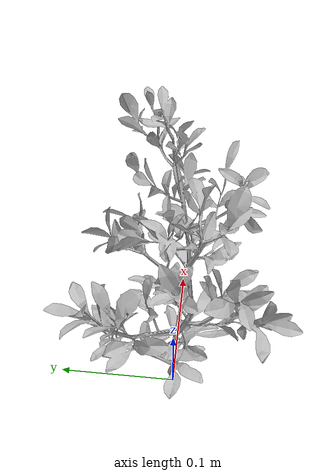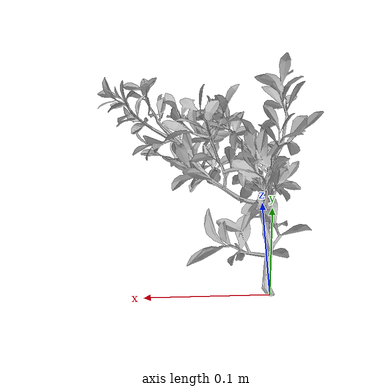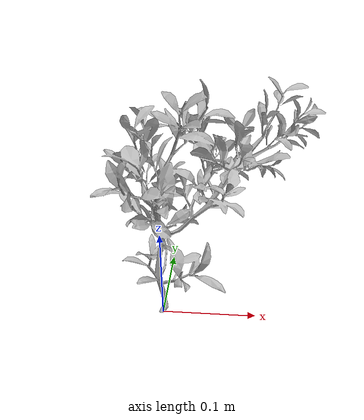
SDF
<?xml version="1.0" ?>
<sdf version="1.6">
  <model name="new_shrub_5">
    <static>true</static>
    <link name="link">
      <collision name="collision">
        <geometry>
          <mesh>
            <uri>model://new_shrub_5/meshes/new_shrub_5.obj</uri>
            <scale>1 1 1</scale>
          </mesh>
        </geometry>
      </collision>
      <visual name="visual">
        <geometry>
          <mesh>
            <uri>model://new_shrub_5/meshes/new_shrub_5.obj</uri>
            <scale>1 1 1</scale>
          </mesh>
        </geometry>
      </visual>
    </link>
  </model>
</sdf>
